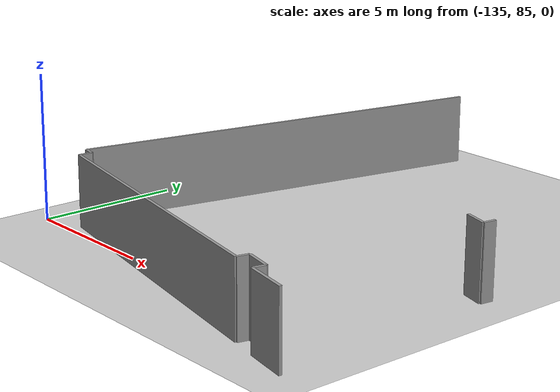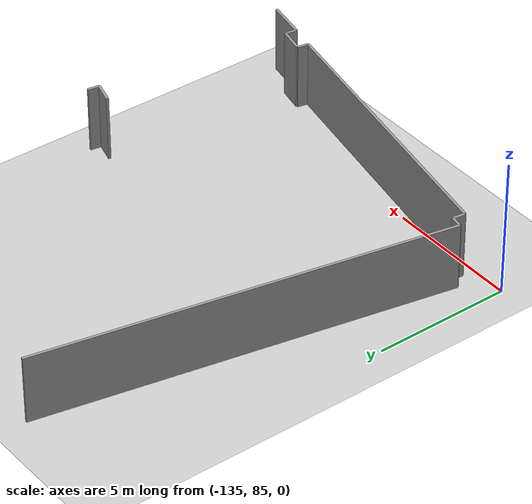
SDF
<sdf version="1.6">
 <world name="default">
  <model name="ground_plane">
   <static>1</static>
   <link name="link">
    <collision name="collision">
     <geometry><plane><normal>0 0 1</normal><size>100 100</size></plane></geometry>
     <surface><friction><ode><mu>100</mu><mu2>50</mu2></ode></friction></surface>
    </collision>
    <visual name="visual">
     <cast_shadows>0</cast_shadows>
     <geometry><plane><normal>0 0 1</normal><size>100 100</size></plane></geometry>
     <material>
      <script><uri>file://media/materials/scripts/gazebo.material</uri><name>Gazebo/Grey</name></script>
     </material>
    </visual>
   </link>
  </model>
  <model name="0510045925_40">
   <static>1</static>
   <link name="Wall_341">
    <collision name="Wall_341_Collision">
     <geometry><box><size>15.027703727 0.1 2.5</size></box></geometry>
     <pose>7.51385186352 0 1.25 0 0 0</pose>
    </collision>
    <visual name="Wall_341_Visual">
     <pose>7.51385186352 0 1.25 0 0 0</pose>
     <geometry><box><size>15.027703727 0.1 2.5</size></box></geometry>
     <material>
      <script><uri>file://media/materials/scripts/gazebo.material</uri><name>Gazebo/Grey</name></script>
      <ambient>1 1 1 1</ambient>
     </material>
    </visual>
    <pose>0.0 -15.0962412122 0 0 0 1.37519795482</pose>
   </link>
   <link name="Wall_348">
    <collision name="Wall_348_Collision">
     <geometry><box><size>0.820385867714 0.1 2.5</size></box></geometry>
     <pose>0.410192933857 0 1.25 0 0 0</pose>
    </collision>
    <visual name="Wall_348_Visual">
     <pose>0.410192933857 0 1.25 0 0 0</pose>
     <geometry><box><size>0.820385867714 0.1 2.5</size></box></geometry>
     <material>
      <script><uri>file://media/materials/scripts/gazebo.material</uri><name>Gazebo/Grey</name></script>
      <ambient>1 1 1 1</ambient>
     </material>
    </visual>
    <pose>12.6718103601 -10.2811349966 0 0 0 -0.264488382549</pose>
   </link>
   <link name="Wall_349">
    <collision name="Wall_349_Collision">
     <geometry><box><size>0.436499514681 0.1 2.5</size></box></geometry>
     <pose>0.218249757341 0 1.25 0 0 0</pose>
    </collision>
    <visual name="Wall_349_Visual">
     <pose>0.218249757341 0 1.25 0 0 0</pose>
     <geometry><box><size>0.436499514681 0.1 2.5</size></box></geometry>
     <material>
      <script><uri>file://media/materials/scripts/gazebo.material</uri><name>Gazebo/Grey</name></script>
      <ambient>1 1 1 1</ambient>
     </material>
    </visual>
    <pose>13.4636684348 -10.4955965585 0 0 0 1.41491991973</pose>
   </link>
   <link name="Wall_357">
    <collision name="Wall_357_Collision">
     <geometry><box><size>1.52132795228 0.1 2.5</size></box></geometry>
     <pose>0.760663976139 0 1.25 0 0 0</pose>
    </collision>
    <visual name="Wall_357_Visual">
     <pose>0.760663976139 0 1.25 0 0 0</pose>
     <geometry><box><size>1.52132795228 0.1 2.5</size></box></geometry>
     <material>
      <script><uri>file://media/materials/scripts/gazebo.material</uri><name>Gazebo/Grey</name></script>
      <ambient>1 1 1 1</ambient>
     </material>
    </visual>
    <pose>13.6065582092 -18.1976853379 0 0 0 2.95397985268</pose>
   </link>
   <link name="Wall_358">
    <collision name="Wall_358_Collision">
     <geometry><box><size>0.419867311824 0.1 2.5</size></box></geometry>
     <pose>0.209933655912 0 1.25 0 0 0</pose>
    </collision>
    <visual name="Wall_358_Visual">
     <pose>0.209933655912 0 1.25 0 0 0</pose>
     <geometry><box><size>0.419867311824 0.1 2.5</size></box></geometry>
     <material>
      <script><uri>file://media/materials/scripts/gazebo.material</uri><name>Gazebo/Grey</name></script>
      <ambient>1 1 1 1</ambient>
     </material>
    </visual>
    <pose>12.1119260932 -17.9139361945 0 0 0 1.35514336968</pose>
   </link>
   <link name="Wall_359">
    <collision name="Wall_359_Collision">
     <geometry><box><size>0.961225145858 0.1 2.5</size></box></geometry>
     <pose>0.480612572929 0 1.25 0 0 0</pose>
    </collision>
    <visual name="Wall_359_Visual">
     <pose>0.480612572929 0 1.25 0 0 0</pose>
     <geometry><box><size>0.961225145858 0.1 2.5</size></box></geometry>
     <material>
      <script><uri>file://media/materials/scripts/gazebo.material</uri><name>Gazebo/Grey</name></script>
      <ambient>1 1 1 1</ambient>
     </material>
    </visual>
    <pose>12.2017715286 -17.5037943199 0 0 0 2.92767780312</pose>
   </link>
   <link name="Wall_360">
    <collision name="Wall_360_Collision">
     <geometry><box><size>0.417690974482 0.1 2.5</size></box></geometry>
     <pose>0.208845487241 0 1.25 0 0 0</pose>
    </collision>
    <visual name="Wall_360_Visual">
     <pose>0.208845487241 0 1.25 0 0 0</pose>
     <geometry><box><size>0.417690974482 0.1 2.5</size></box></geometry>
     <material>
      <script><uri>file://media/materials/scripts/gazebo.material</uri><name>Gazebo/Grey</name></script>
      <ambient>1 1 1 1</ambient>
     </material>
    </visual>
    <pose>11.2624552676 -17.2997385853 0 0 0 -1.78821304898</pose>
   </link>
   <link name="Wall_361">
    <collision name="Wall_361_Collision">
     <geometry><box><size>11.0045154927 0.1 2.5</size></box></geometry>
     <pose>5.50225774636 0 1.25 0 0 0</pose>
    </collision>
    <visual name="Wall_361_Visual">
     <pose>5.50225774636 0 1.25 0 0 0</pose>
     <geometry><box><size>11.0045154927 0.1 2.5</size></box></geometry>
     <material>
      <script><uri>file://media/materials/scripts/gazebo.material</uri><name>Gazebo/Grey</name></script>
      <ambient>1 1 1 1</ambient>
     </material>
    </visual>
    <pose>11.1723560316 -17.7075962539 0 0 0 2.95045844707</pose>
   </link>
   <link name="Wall_362">
    <collision name="Wall_362_Collision">
     <geometry><box><size>0.452449712933 0.1 2.5</size></box></geometry>
     <pose>0.226224856466 0 1.25 0 0 0</pose>
    </collision>
    <visual name="Wall_362_Visual">
     <pose>0.226224856466 0 1.25 0 0 0</pose>
     <geometry><box><size>0.452449712933 0.1 2.5</size></box></geometry>
     <material>
      <script><uri>file://media/materials/scripts/gazebo.material</uri><name>Gazebo/Grey</name></script>
      <ambient>1 1 1 1</ambient>
     </material>
    </visual>
    <pose>0.368239384787 -15.6170401766 0 0 0 1.46119219326</pose>
   </link>
   <link name="Wall_363">
    <collision name="Wall_363_Collision">
     <geometry><box><size>0.423732110259 0.1 2.5</size></box></geometry>
     <pose>0.21186605513 0 1.25 0 0 0</pose>
    </collision>
    <visual name="Wall_363_Visual">
     <pose>0.21186605513 0 1.25 0 0 0</pose>
     <geometry><box><size>0.423732110259 0.1 2.5</size></box></geometry>
     <material>
      <script><uri>file://media/materials/scripts/gazebo.material</uri><name>Gazebo/Grey</name></script>
      <ambient>1 1 1 1</ambient>
     </material>
    </visual>
    <pose>0.417730514454 -15.1673053983 0 0 0 2.97308616931</pose>
   </link>
   <pose>-133.95 101.083118449 0 0 0 0</pose>
  </model>
 </world>
</sdf>
